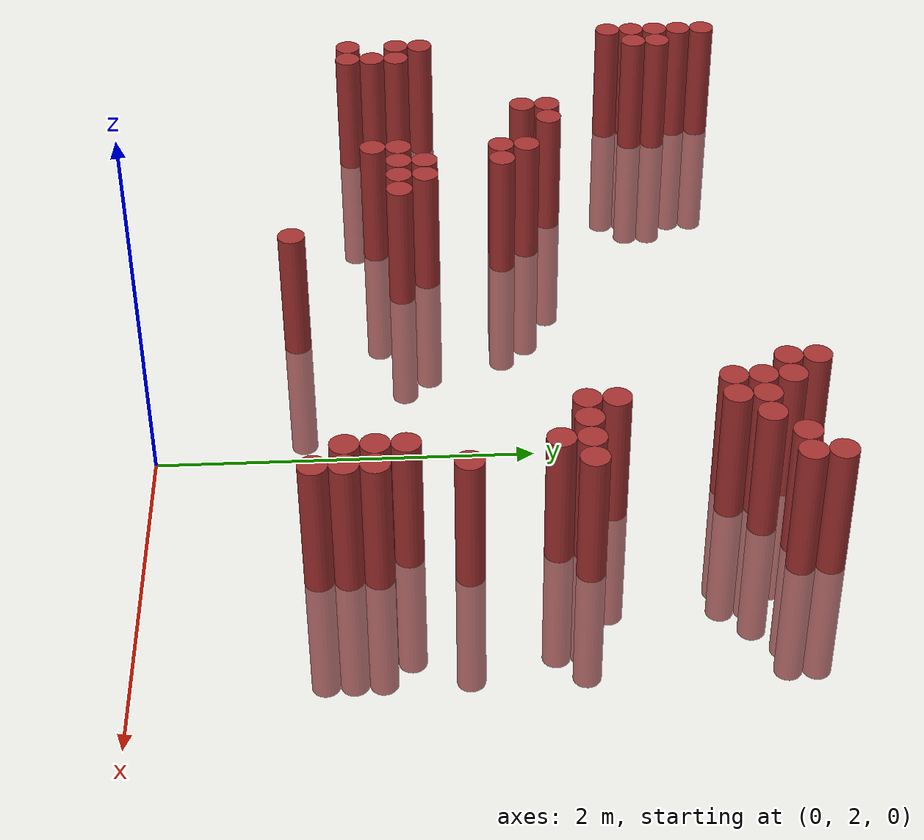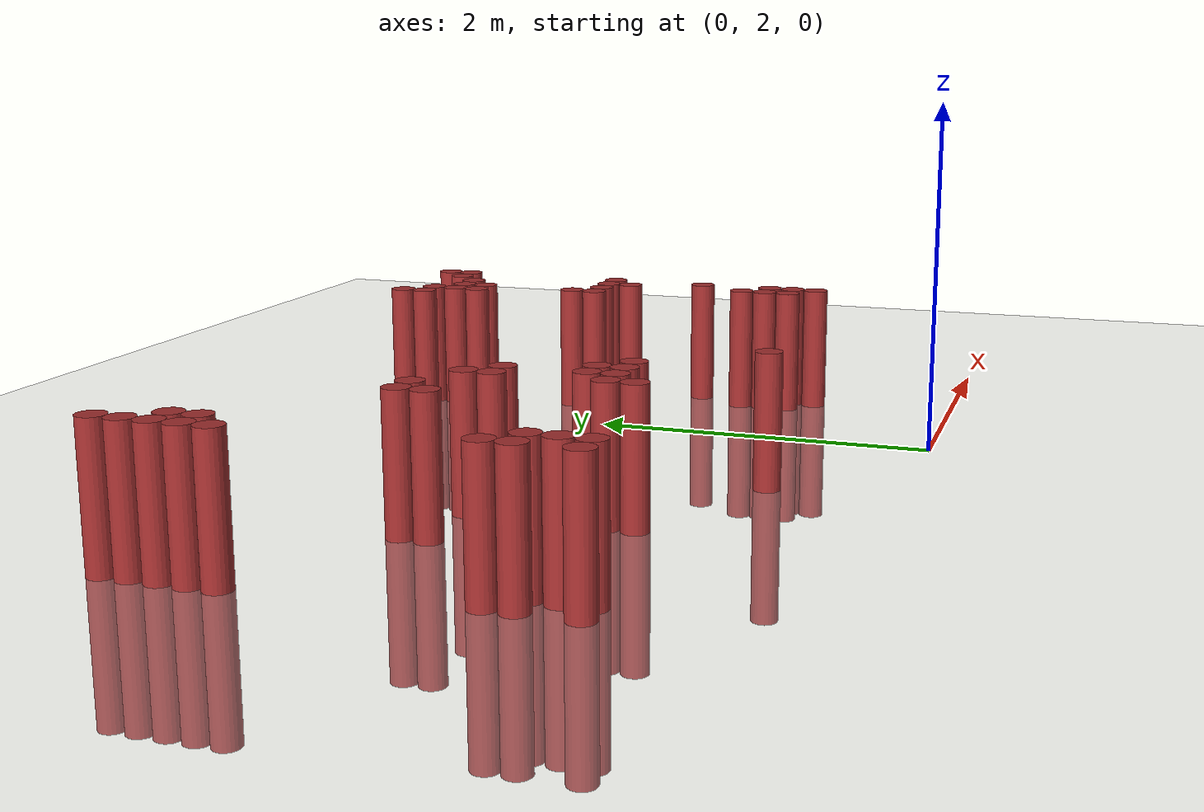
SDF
<sdf version="1.6">
 <world name="default">
  <model name="ground_plane">
   <static>1</static>
   <link name="link">
    <collision name="collision">
     <geometry><plane><normal>0 0 1</normal><size>100 100</size></plane></geometry>
     <surface><friction><ode><mu>100</mu><mu2>50</mu2></ode></friction></surface>
    </collision>
    <visual name="visual">
     <cast_shadows>0</cast_shadows>
     <geometry><plane><normal>0 0 1</normal><size>100 100</size></plane></geometry>
     <material>
      <script><uri>file://media/materials/scripts/gazebo.material</uri><name>Gazebo/Grey</name></script>
     </material>
    </visual>
   </link>
  </model>
  <model name="unit_cylinder_272">
   <static>1</static>
   <pose>-3.275000 4.675000 0.000000 0.000000 0.000000 0.000000</pose>
   <link name="link">
    <inertial>
     <mass>1</mass>
     <inertia><ixx>0.145833</ixx><ixy>0</ixy><ixz>0</ixz><iyy>0.145833</iyy><iyz>0</iyz><izz>0.125</izz></inertia>
    </inertial>
    <collision name="collision">
     <geometry><cylinder><radius>0.075000</radius><length>1.5</length></cylinder></geometry>
    </collision>
    <visual name="visual">
     <geometry><cylinder><radius>0.075000</radius><length>1.5</length></cylinder></geometry>
     <material>
      <ambient>0.648000 0.192000 0.192000 1</ambient>
      <diffuse>0.648000 0.192000 0.192000 1</diffuse>
     </material>
     <material>
      <script><name>Gazebo/Grey</name><uri>file://media/materials/scripts/gazebo.material</uri></script>
     </material>
    </visual>
   </link>
  </model>
  <model name="unit_cylinder_273">
   <static>1</static>
   <pose>-3.275000 4.825000 0.000000 0.000000 0.000000 0.000000</pose>
   <link name="link">
    <inertial>
     <mass>1</mass>
     <inertia><ixx>0.145833</ixx><ixy>0</ixy><ixz>0</ixz><iyy>0.145833</iyy><iyz>0</iyz><izz>0.125</izz></inertia>
    </inertial>
    <collision name="collision">
     <geometry><cylinder><radius>0.075000</radius><length>1.5</length></cylinder></geometry>
    </collision>
    <visual name="visual">
     <geometry><cylinder><radius>0.075000</radius><length>1.5</length></cylinder></geometry>
     <material>
      <ambient>0.648000 0.192000 0.192000 1</ambient>
      <diffuse>0.648000 0.192000 0.192000 1</diffuse>
     </material>
     <material>
      <script><name>Gazebo/Grey</name><uri>file://media/materials/scripts/gazebo.material</uri></script>
     </material>
    </visual>
   </link>
  </model>
  <model name="unit_cylinder_274">
   <static>1</static>
   <pose>-3.275000 4.975000 0.000000 0.000000 0.000000 0.000000</pose>
   <link name="link">
    <inertial>
     <mass>1</mass>
     <inertia><ixx>0.145833</ixx><ixy>0</ixy><ixz>0</ixz><iyy>0.145833</iyy><iyz>0</iyz><izz>0.125</izz></inertia>
    </inertial>
    <collision name="collision">
     <geometry><cylinder><radius>0.075000</radius><length>1.5</length></cylinder></geometry>
    </collision>
    <visual name="visual">
     <geometry><cylinder><radius>0.075000</radius><length>1.5</length></cylinder></geometry>
     <material>
      <ambient>0.648000 0.192000 0.192000 1</ambient>
      <diffuse>0.648000 0.192000 0.192000 1</diffuse>
     </material>
     <material>
      <script><name>Gazebo/Grey</name><uri>file://media/materials/scripts/gazebo.material</uri></script>
     </material>
    </visual>
   </link>
  </model>
  <model name="unit_cylinder_275">
   <static>1</static>
   <pose>-3.275000 5.125000 0.000000 0.000000 0.000000 0.000000</pose>
   <link name="link">
    <inertial>
     <mass>1</mass>
     <inertia><ixx>0.145833</ixx><ixy>0</ixy><ixz>0</ixz><iyy>0.145833</iyy><iyz>0</iyz><izz>0.125</izz></inertia>
    </inertial>
    <collision name="collision">
     <geometry><cylinder><radius>0.075000</radius><length>1.5</length></cylinder></geometry>
    </collision>
    <visual name="visual">
     <geometry><cylinder><radius>0.075000</radius><length>1.5</length></cylinder></geometry>
     <material>
      <ambient>0.648000 0.192000 0.192000 1</ambient>
      <diffuse>0.648000 0.192000 0.192000 1</diffuse>
     </material>
     <material>
      <script><name>Gazebo/Grey</name><uri>file://media/materials/scripts/gazebo.material</uri></script>
     </material>
    </visual>
   </link>
  </model>
  <model name="unit_cylinder_276">
   <static>1</static>
   <pose>-3.275000 5.275000 0.000000 0.000000 0.000000 0.000000</pose>
   <link name="link">
    <inertial>
     <mass>1</mass>
     <inertia><ixx>0.145833</ixx><ixy>0</ixy><ixz>0</ixz><iyy>0.145833</iyy><iyz>0</iyz><izz>0.125</izz></inertia>
    </inertial>
    <collision name="collision">
     <geometry><cylinder><radius>0.075000</radius><length>1.5</length></cylinder></geometry>
    </collision>
    <visual name="visual">
     <geometry><cylinder><radius>0.075000</radius><length>1.5</length></cylinder></geometry>
     <material>
      <ambient>0.648000 0.192000 0.192000 1</ambient>
      <diffuse>0.648000 0.192000 0.192000 1</diffuse>
     </material>
     <material>
      <script><name>Gazebo/Grey</name><uri>file://media/materials/scripts/gazebo.material</uri></script>
     </material>
    </visual>
   </link>
  </model>
  <model name="unit_cylinder_284">
   <static>1</static>
   <pose>-3.125000 3.025000 0.000000 0.000000 0.000000 0.000000</pose>
   <link name="link">
    <inertial>
     <mass>1</mass>
     <inertia><ixx>0.145833</ixx><ixy>0</ixy><ixz>0</ixz><iyy>0.145833</iyy><iyz>0</iyz><izz>0.125</izz></inertia>
    </inertial>
    <collision name="collision">
     <geometry><cylinder><radius>0.075000</radius><length>1.5</length></cylinder></geometry>
    </collision>
    <visual name="visual">
     <geometry><cylinder><radius>0.075000</radius><length>1.5</length></cylinder></geometry>
     <material>
      <ambient>0.648000 0.192000 0.192000 1</ambient>
      <diffuse>0.648000 0.192000 0.192000 1</diffuse>
     </material>
     <material>
      <script><name>Gazebo/Grey</name><uri>file://media/materials/scripts/gazebo.material</uri></script>
     </material>
    </visual>
   </link>
  </model>
  <model name="unit_cylinder_285">
   <static>1</static>
   <pose>-3.125000 3.325000 0.000000 0.000000 0.000000 0.000000</pose>
   <link name="link">
    <inertial>
     <mass>1</mass>
     <inertia><ixx>0.145833</ixx><ixy>0</ixy><ixz>0</ixz><iyy>0.145833</iyy><iyz>0</iyz><izz>0.125</izz></inertia>
    </inertial>
    <collision name="collision">
     <geometry><cylinder><radius>0.075000</radius><length>1.5</length></cylinder></geometry>
    </collision>
    <visual name="visual">
     <geometry><cylinder><radius>0.075000</radius><length>1.5</length></cylinder></geometry>
     <material>
      <ambient>0.648000 0.192000 0.192000 1</ambient>
      <diffuse>0.648000 0.192000 0.192000 1</diffuse>
     </material>
     <material>
      <script><name>Gazebo/Grey</name><uri>file://media/materials/scripts/gazebo.material</uri></script>
     </material>
    </visual>
   </link>
  </model>
  <model name="unit_cylinder_286">
   <static>1</static>
   <pose>-3.125000 3.475000 0.000000 0.000000 0.000000 0.000000</pose>
   <link name="link">
    <inertial>
     <mass>1</mass>
     <inertia><ixx>0.145833</ixx><ixy>0</ixy><ixz>0</ixz><iyy>0.145833</iyy><iyz>0</iyz><izz>0.125</izz></inertia>
    </inertial>
    <collision name="collision">
     <geometry><cylinder><radius>0.075000</radius><length>1.5</length></cylinder></geometry>
    </collision>
    <visual name="visual">
     <geometry><cylinder><radius>0.075000</radius><length>1.5</length></cylinder></geometry>
     <material>
      <ambient>0.648000 0.192000 0.192000 1</ambient>
      <diffuse>0.648000 0.192000 0.192000 1</diffuse>
     </material>
     <material>
      <script><name>Gazebo/Grey</name><uri>file://media/materials/scripts/gazebo.material</uri></script>
     </material>
    </visual>
   </link>
  </model>
  <model name="unit_cylinder_287">
   <static>1</static>
   <pose>-3.125000 4.825000 0.000000 0.000000 0.000000 0.000000</pose>
   <link name="link">
    <inertial>
     <mass>1</mass>
     <inertia><ixx>0.145833</ixx><ixy>0</ixy><ixz>0</ixz><iyy>0.145833</iyy><iyz>0</iyz><izz>0.125</izz></inertia>
    </inertial>
    <collision name="collision">
     <geometry><cylinder><radius>0.075000</radius><length>1.5</length></cylinder></geometry>
    </collision>
    <visual name="visual">
     <geometry><cylinder><radius>0.075000</radius><length>1.5</length></cylinder></geometry>
     <material>
      <ambient>0.648000 0.192000 0.192000 1</ambient>
      <diffuse>0.648000 0.192000 0.192000 1</diffuse>
     </material>
     <material>
      <script><name>Gazebo/Grey</name><uri>file://media/materials/scripts/gazebo.material</uri></script>
     </material>
    </visual>
   </link>
  </model>
  <model name="unit_cylinder_288">
   <static>1</static>
   <pose>-3.125000 4.975000 0.000000 0.000000 0.000000 0.000000</pose>
   <link name="link">
    <inertial>
     <mass>1</mass>
     <inertia><ixx>0.145833</ixx><ixy>0</ixy><ixz>0</ixz><iyy>0.145833</iyy><iyz>0</iyz><izz>0.125</izz></inertia>
    </inertial>
    <collision name="collision">
     <geometry><cylinder><radius>0.075000</radius><length>1.5</length></cylinder></geometry>
    </collision>
    <visual name="visual">
     <geometry><cylinder><radius>0.075000</radius><length>1.5</length></cylinder></geometry>
     <material>
      <ambient>0.648000 0.192000 0.192000 1</ambient>
      <diffuse>0.648000 0.192000 0.192000 1</diffuse>
     </material>
     <material>
      <script><name>Gazebo/Grey</name><uri>file://media/materials/scripts/gazebo.material</uri></script>
     </material>
    </visual>
   </link>
  </model>
  <model name="unit_cylinder_295">
   <static>1</static>
   <pose>-2.975000 3.025000 0.000000 0.000000 0.000000 0.000000</pose>
   <link name="link">
    <inertial>
     <mass>1</mass>
     <inertia><ixx>0.145833</ixx><ixy>0</ixy><ixz>0</ixz><iyy>0.145833</iyy><iyz>0</iyz><izz>0.125</izz></inertia>
    </inertial>
    <collision name="collision">
     <geometry><cylinder><radius>0.075000</radius><length>1.5</length></cylinder></geometry>
    </collision>
    <visual name="visual">
     <geometry><cylinder><radius>0.075000</radius><length>1.5</length></cylinder></geometry>
     <material>
      <ambient>0.648000 0.192000 0.192000 1</ambient>
      <diffuse>0.648000 0.192000 0.192000 1</diffuse>
     </material>
     <material>
      <script><name>Gazebo/Grey</name><uri>file://media/materials/scripts/gazebo.material</uri></script>
     </material>
    </visual>
   </link>
  </model>
  <model name="unit_cylinder_296">
   <static>1</static>
   <pose>-2.975000 3.175000 0.000000 0.000000 0.000000 0.000000</pose>
   <link name="link">
    <inertial>
     <mass>1</mass>
     <inertia><ixx>0.145833</ixx><ixy>0</ixy><ixz>0</ixz><iyy>0.145833</iyy><iyz>0</iyz><izz>0.125</izz></inertia>
    </inertial>
    <collision name="collision">
     <geometry><cylinder><radius>0.075000</radius><length>1.5</length></cylinder></geometry>
    </collision>
    <visual name="visual">
     <geometry><cylinder><radius>0.075000</radius><length>1.5</length></cylinder></geometry>
     <material>
      <ambient>0.648000 0.192000 0.192000 1</ambient>
      <diffuse>0.648000 0.192000 0.192000 1</diffuse>
     </material>
     <material>
      <script><name>Gazebo/Grey</name><uri>file://media/materials/scripts/gazebo.material</uri></script>
     </material>
    </visual>
   </link>
  </model>
  <model name="unit_cylinder_297">
   <static>1</static>
   <pose>-2.975000 3.325000 0.000000 0.000000 0.000000 0.000000</pose>
   <link name="link">
    <inertial>
     <mass>1</mass>
     <inertia><ixx>0.145833</ixx><ixy>0</ixy><ixz>0</ixz><iyy>0.145833</iyy><iyz>0</iyz><izz>0.125</izz></inertia>
    </inertial>
    <collision name="collision">
     <geometry><cylinder><radius>0.075000</radius><length>1.5</length></cylinder></geometry>
    </collision>
    <visual name="visual">
     <geometry><cylinder><radius>0.075000</radius><length>1.5</length></cylinder></geometry>
     <material>
      <ambient>0.648000 0.192000 0.192000 1</ambient>
      <diffuse>0.648000 0.192000 0.192000 1</diffuse>
     </material>
     <material>
      <script><name>Gazebo/Grey</name><uri>file://media/materials/scripts/gazebo.material</uri></script>
     </material>
    </visual>
   </link>
  </model>
  <model name="unit_cylinder_315">
   <static>1</static>
   <pose>-2.375000 4.075000 0.000000 0.000000 0.000000 0.000000</pose>
   <link name="link">
    <inertial>
     <mass>1</mass>
     <inertia><ixx>0.145833</ixx><ixy>0</ixy><ixz>0</ixz><iyy>0.145833</iyy><iyz>0</iyz><izz>0.125</izz></inertia>
    </inertial>
    <collision name="collision">
     <geometry><cylinder><radius>0.075000</radius><length>1.5</length></cylinder></geometry>
    </collision>
    <visual name="visual">
     <geometry><cylinder><radius>0.075000</radius><length>1.5</length></cylinder></geometry>
     <material>
      <ambient>0.648000 0.192000 0.192000 1</ambient>
      <diffuse>0.648000 0.192000 0.192000 1</diffuse>
     </material>
     <material>
      <script><name>Gazebo/Grey</name><uri>file://media/materials/scripts/gazebo.material</uri></script>
     </material>
    </visual>
   </link>
  </model>
  <model name="unit_cylinder_316">
   <static>1</static>
   <pose>-2.375000 4.225000 0.000000 0.000000 0.000000 0.000000</pose>
   <link name="link">
    <inertial>
     <mass>1</mass>
     <inertia><ixx>0.145833</ixx><ixy>0</ixy><ixz>0</ixz><iyy>0.145833</iyy><iyz>0</iyz><izz>0.125</izz></inertia>
    </inertial>
    <collision name="collision">
     <geometry><cylinder><radius>0.075000</radius><length>1.5</length></cylinder></geometry>
    </collision>
    <visual name="visual">
     <geometry><cylinder><radius>0.075000</radius><length>1.5</length></cylinder></geometry>
     <material>
      <ambient>0.648000 0.192000 0.192000 1</ambient>
      <diffuse>0.648000 0.192000 0.192000 1</diffuse>
     </material>
     <material>
      <script><name>Gazebo/Grey</name><uri>file://media/materials/scripts/gazebo.material</uri></script>
     </material>
    </visual>
   </link>
  </model>
  <model name="unit_cylinder_325">
   <static>1</static>
   <pose>-2.225000 4.225000 0.000000 0.000000 0.000000 0.000000</pose>
   <link name="link">
    <inertial>
     <mass>1</mass>
     <inertia><ixx>0.145833</ixx><ixy>0</ixy><ixz>0</ixz><iyy>0.145833</iyy><iyz>0</iyz><izz>0.125</izz></inertia>
    </inertial>
    <collision name="collision">
     <geometry><cylinder><radius>0.075000</radius><length>1.5</length></cylinder></geometry>
    </collision>
    <visual name="visual">
     <geometry><cylinder><radius>0.075000</radius><length>1.5</length></cylinder></geometry>
     <material>
      <ambient>0.648000 0.192000 0.192000 1</ambient>
      <diffuse>0.648000 0.192000 0.192000 1</diffuse>
     </material>
     <material>
      <script><name>Gazebo/Grey</name><uri>file://media/materials/scripts/gazebo.material</uri></script>
     </material>
    </visual>
   </link>
  </model>
  <model name="unit_cylinder_343">
   <static>1</static>
   <pose>-1.925000 3.175000 0.000000 0.000000 0.000000 0.000000</pose>
   <link name="link">
    <inertial>
     <mass>1</mass>
     <inertia><ixx>0.145833</ixx><ixy>0</ixy><ixz>0</ixz><iyy>0.145833</iyy><iyz>0</iyz><izz>0.125</izz></inertia>
    </inertial>
    <collision name="collision">
     <geometry><cylinder><radius>0.075000</radius><length>1.5</length></cylinder></geometry>
    </collision>
    <visual name="visual">
     <geometry><cylinder><radius>0.075000</radius><length>1.5</length></cylinder></geometry>
     <material>
      <ambient>0.648000 0.192000 0.192000 1</ambient>
      <diffuse>0.648000 0.192000 0.192000 1</diffuse>
     </material>
     <material>
      <script><name>Gazebo/Grey</name><uri>file://media/materials/scripts/gazebo.material</uri></script>
     </material>
    </visual>
   </link>
  </model>
  <model name="unit_cylinder_344">
   <static>1</static>
   <pose>-1.925000 3.325000 0.000000 0.000000 0.000000 0.000000</pose>
   <link name="link">
    <inertial>
     <mass>1</mass>
     <inertia><ixx>0.145833</ixx><ixy>0</ixy><ixz>0</ixz><iyy>0.145833</iyy><iyz>0</iyz><izz>0.125</izz></inertia>
    </inertial>
    <collision name="collision">
     <geometry><cylinder><radius>0.075000</radius><length>1.5</length></cylinder></geometry>
    </collision>
    <visual name="visual">
     <geometry><cylinder><radius>0.075000</radius><length>1.5</length></cylinder></geometry>
     <material>
      <ambient>0.648000 0.192000 0.192000 1</ambient>
      <diffuse>0.648000 0.192000 0.192000 1</diffuse>
     </material>
     <material>
      <script><name>Gazebo/Grey</name><uri>file://media/materials/scripts/gazebo.material</uri></script>
     </material>
    </visual>
   </link>
  </model>
  <model name="unit_cylinder_345">
   <static>1</static>
   <pose>-1.925000 3.925000 0.000000 0.000000 0.000000 0.000000</pose>
   <link name="link">
    <inertial>
     <mass>1</mass>
     <inertia><ixx>0.145833</ixx><ixy>0</ixy><ixz>0</ixz><iyy>0.145833</iyy><iyz>0</iyz><izz>0.125</izz></inertia>
    </inertial>
    <collision name="collision">
     <geometry><cylinder><radius>0.075000</radius><length>1.5</length></cylinder></geometry>
    </collision>
    <visual name="visual">
     <geometry><cylinder><radius>0.075000</radius><length>1.5</length></cylinder></geometry>
     <material>
      <ambient>0.648000 0.192000 0.192000 1</ambient>
      <diffuse>0.648000 0.192000 0.192000 1</diffuse>
     </material>
     <material>
      <script><name>Gazebo/Grey</name><uri>file://media/materials/scripts/gazebo.material</uri></script>
     </material>
    </visual>
   </link>
  </model>
  <model name="unit_cylinder_346">
   <static>1</static>
   <pose>-1.925000 4.075000 0.000000 0.000000 0.000000 0.000000</pose>
   <link name="link">
    <inertial>
     <mass>1</mass>
     <inertia><ixx>0.145833</ixx><ixy>0</ixy><ixz>0</ixz><iyy>0.145833</iyy><iyz>0</iyz><izz>0.125</izz></inertia>
    </inertial>
    <collision name="collision">
     <geometry><cylinder><radius>0.075000</radius><length>1.5</length></cylinder></geometry>
    </collision>
    <visual name="visual">
     <geometry><cylinder><radius>0.075000</radius><length>1.5</length></cylinder></geometry>
     <material>
      <ambient>0.648000 0.192000 0.192000 1</ambient>
      <diffuse>0.648000 0.192000 0.192000 1</diffuse>
     </material>
     <material>
      <script><name>Gazebo/Grey</name><uri>file://media/materials/scripts/gazebo.material</uri></script>
     </material>
    </visual>
   </link>
  </model>
  <model name="unit_cylinder_352">
   <static>1</static>
   <pose>-1.775000 3.325000 0.000000 0.000000 0.000000 0.000000</pose>
   <link name="link">
    <inertial>
     <mass>1</mass>
     <inertia><ixx>0.145833</ixx><ixy>0</ixy><ixz>0</ixz><iyy>0.145833</iyy><iyz>0</iyz><izz>0.125</izz></inertia>
    </inertial>
    <collision name="collision">
     <geometry><cylinder><radius>0.075000</radius><length>1.5</length></cylinder></geometry>
    </collision>
    <visual name="visual">
     <geometry><cylinder><radius>0.075000</radius><length>1.5</length></cylinder></geometry>
     <material>
      <ambient>0.648000 0.192000 0.192000 1</ambient>
      <diffuse>0.648000 0.192000 0.192000 1</diffuse>
     </material>
     <material>
      <script><name>Gazebo/Grey</name><uri>file://media/materials/scripts/gazebo.material</uri></script>
     </material>
    </visual>
   </link>
  </model>
  <model name="unit_cylinder_353">
   <static>1</static>
   <pose>-1.775000 3.475000 0.000000 0.000000 0.000000 0.000000</pose>
   <link name="link">
    <inertial>
     <mass>1</mass>
     <inertia><ixx>0.145833</ixx><ixy>0</ixy><ixz>0</ixz><iyy>0.145833</iyy><iyz>0</iyz><izz>0.125</izz></inertia>
    </inertial>
    <collision name="collision">
     <geometry><cylinder><radius>0.075000</radius><length>1.5</length></cylinder></geometry>
    </collision>
    <visual name="visual">
     <geometry><cylinder><radius>0.075000</radius><length>1.5</length></cylinder></geometry>
     <material>
      <ambient>0.648000 0.192000 0.192000 1</ambient>
      <diffuse>0.648000 0.192000 0.192000 1</diffuse>
     </material>
     <material>
      <script><name>Gazebo/Grey</name><uri>file://media/materials/scripts/gazebo.material</uri></script>
     </material>
    </visual>
   </link>
  </model>
  <model name="unit_cylinder_354">
   <static>1</static>
   <pose>-1.775000 3.925000 0.000000 0.000000 0.000000 0.000000</pose>
   <link name="link">
    <inertial>
     <mass>1</mass>
     <inertia><ixx>0.145833</ixx><ixy>0</ixy><ixz>0</ixz><iyy>0.145833</iyy><iyz>0</iyz><izz>0.125</izz></inertia>
    </inertial>
    <collision name="collision">
     <geometry><cylinder><radius>0.075000</radius><length>1.5</length></cylinder></geometry>
    </collision>
    <visual name="visual">
     <geometry><cylinder><radius>0.075000</radius><length>1.5</length></cylinder></geometry>
     <material>
      <ambient>0.648000 0.192000 0.192000 1</ambient>
      <diffuse>0.648000 0.192000 0.192000 1</diffuse>
     </material>
     <material>
      <script><name>Gazebo/Grey</name><uri>file://media/materials/scripts/gazebo.material</uri></script>
     </material>
    </visual>
   </link>
  </model>
  <model name="unit_cylinder_357">
   <static>1</static>
   <pose>-1.625000 3.325000 0.000000 0.000000 0.000000 0.000000</pose>
   <link name="link">
    <inertial>
     <mass>1</mass>
     <inertia><ixx>0.145833</ixx><ixy>0</ixy><ixz>0</ixz><iyy>0.145833</iyy><iyz>0</iyz><izz>0.125</izz></inertia>
    </inertial>
    <collision name="collision">
     <geometry><cylinder><radius>0.075000</radius><length>1.5</length></cylinder></geometry>
    </collision>
    <visual name="visual">
     <geometry><cylinder><radius>0.075000</radius><length>1.5</length></cylinder></geometry>
     <material>
      <ambient>0.648000 0.192000 0.192000 1</ambient>
      <diffuse>0.648000 0.192000 0.192000 1</diffuse>
     </material>
     <material>
      <script><name>Gazebo/Grey</name><uri>file://media/materials/scripts/gazebo.material</uri></script>
     </material>
    </visual>
   </link>
  </model>
  <model name="unit_cylinder_358">
   <static>1</static>
   <pose>-1.625000 3.475000 0.000000 0.000000 0.000000 0.000000</pose>
   <link name="link">
    <inertial>
     <mass>1</mass>
     <inertia><ixx>0.145833</ixx><ixy>0</ixy><ixz>0</ixz><iyy>0.145833</iyy><iyz>0</iyz><izz>0.125</izz></inertia>
    </inertial>
    <collision name="collision">
     <geometry><cylinder><radius>0.075000</radius><length>1.5</length></cylinder></geometry>
    </collision>
    <visual name="visual">
     <geometry><cylinder><radius>0.075000</radius><length>1.5</length></cylinder></geometry>
     <material>
      <ambient>0.648000 0.192000 0.192000 1</ambient>
      <diffuse>0.648000 0.192000 0.192000 1</diffuse>
     </material>
     <material>
      <script><name>Gazebo/Grey</name><uri>file://media/materials/scripts/gazebo.material</uri></script>
     </material>
    </visual>
   </link>
  </model>
  <model name="unit_cylinder_359">
   <static>1</static>
   <pose>-1.475000 3.325000 0.000000 0.000000 0.000000 0.000000</pose>
   <link name="link">
    <inertial>
     <mass>1</mass>
     <inertia><ixx>0.145833</ixx><ixy>0</ixy><ixz>0</ixz><iyy>0.145833</iyy><iyz>0</iyz><izz>0.125</izz></inertia>
    </inertial>
    <collision name="collision">
     <geometry><cylinder><radius>0.075000</radius><length>1.5</length></cylinder></geometry>
    </collision>
    <visual name="visual">
     <geometry><cylinder><radius>0.075000</radius><length>1.5</length></cylinder></geometry>
     <material>
      <ambient>0.648000 0.192000 0.192000 1</ambient>
      <diffuse>0.648000 0.192000 0.192000 1</diffuse>
     </material>
     <material>
      <script><name>Gazebo/Grey</name><uri>file://media/materials/scripts/gazebo.material</uri></script>
     </material>
    </visual>
   </link>
  </model>
  <model name="unit_cylinder_372">
   <static>1</static>
   <pose>-1.025000 2.725000 0.000000 0.000000 0.000000 0.000000</pose>
   <link name="link">
    <inertial>
     <mass>1</mass>
     <inertia><ixx>0.145833</ixx><ixy>0</ixy><ixz>0</ixz><iyy>0.145833</iyy><iyz>0</iyz><izz>0.125</izz></inertia>
    </inertial>
    <collision name="collision">
     <geometry><cylinder><radius>0.075000</radius><length>1.5</length></cylinder></geometry>
    </collision>
    <visual name="visual">
     <geometry><cylinder><radius>0.075000</radius><length>1.5</length></cylinder></geometry>
     <material>
      <ambient>0.648000 0.192000 0.192000 1</ambient>
      <diffuse>0.648000 0.192000 0.192000 1</diffuse>
     </material>
     <material>
      <script><name>Gazebo/Grey</name><uri>file://media/materials/scripts/gazebo.material</uri></script>
     </material>
    </visual>
   </link>
  </model>
  <model name="unit_cylinder_386">
   <static>1</static>
   <pose>0.175000 5.275000 0.000000 0.000000 0.000000 0.000000</pose>
   <link name="link">
    <inertial>
     <mass>1</mass>
     <inertia><ixx>0.145833</ixx><ixy>0</ixy><ixz>0</ixz><iyy>0.145833</iyy><iyz>0</iyz><izz>0.125</izz></inertia>
    </inertial>
    <collision name="collision">
     <geometry><cylinder><radius>0.075000</radius><length>1.5</length></cylinder></geometry>
    </collision>
    <visual name="visual">
     <geometry><cylinder><radius>0.075000</radius><length>1.5</length></cylinder></geometry>
     <material>
      <ambient>0.648000 0.192000 0.192000 1</ambient>
      <diffuse>0.648000 0.192000 0.192000 1</diffuse>
     </material>
     <material>
      <script><name>Gazebo/Grey</name><uri>file://media/materials/scripts/gazebo.material</uri></script>
     </material>
    </visual>
   </link>
  </model>
  <model name="unit_cylinder_387">
   <static>1</static>
   <pose>0.175000 5.425000 0.000000 0.000000 0.000000 0.000000</pose>
   <link name="link">
    <inertial>
     <mass>1</mass>
     <inertia><ixx>0.145833</ixx><ixy>0</ixy><ixz>0</ixz><iyy>0.145833</iyy><iyz>0</iyz><izz>0.125</izz></inertia>
    </inertial>
    <collision name="collision">
     <geometry><cylinder><radius>0.075000</radius><length>1.5</length></cylinder></geometry>
    </collision>
    <visual name="visual">
     <geometry><cylinder><radius>0.075000</radius><length>1.5</length></cylinder></geometry>
     <material>
      <ambient>0.648000 0.192000 0.192000 1</ambient>
      <diffuse>0.648000 0.192000 0.192000 1</diffuse>
     </material>
     <material>
      <script><name>Gazebo/Grey</name><uri>file://media/materials/scripts/gazebo.material</uri></script>
     </material>
    </visual>
   </link>
  </model>
  <model name="unit_cylinder_388">
   <static>1</static>
   <pose>0.325000 4.975000 0.000000 0.000000 0.000000 0.000000</pose>
   <link name="link">
    <inertial>
     <mass>1</mass>
     <inertia><ixx>0.145833</ixx><ixy>0</ixy><ixz>0</ixz><iyy>0.145833</iyy><iyz>0</iyz><izz>0.125</izz></inertia>
    </inertial>
    <collision name="collision">
     <geometry><cylinder><radius>0.075000</radius><length>1.5</length></cylinder></geometry>
    </collision>
    <visual name="visual">
     <geometry><cylinder><radius>0.075000</radius><length>1.5</length></cylinder></geometry>
     <material>
      <ambient>0.648000 0.192000 0.192000 1</ambient>
      <diffuse>0.648000 0.192000 0.192000 1</diffuse>
     </material>
     <material>
      <script><name>Gazebo/Grey</name><uri>file://media/materials/scripts/gazebo.material</uri></script>
     </material>
    </visual>
   </link>
  </model>
  <model name="unit_cylinder_389">
   <static>1</static>
   <pose>0.325000 5.125000 0.000000 0.000000 0.000000 0.000000</pose>
   <link name="link">
    <inertial>
     <mass>1</mass>
     <inertia><ixx>0.145833</ixx><ixy>0</ixy><ixz>0</ixz><iyy>0.145833</iyy><iyz>0</iyz><izz>0.125</izz></inertia>
    </inertial>
    <collision name="collision">
     <geometry><cylinder><radius>0.075000</radius><length>1.5</length></cylinder></geometry>
    </collision>
    <visual name="visual">
     <geometry><cylinder><radius>0.075000</radius><length>1.5</length></cylinder></geometry>
     <material>
      <ambient>0.648000 0.192000 0.192000 1</ambient>
      <diffuse>0.648000 0.192000 0.192000 1</diffuse>
     </material>
     <material>
      <script><name>Gazebo/Grey</name><uri>file://media/materials/scripts/gazebo.material</uri></script>
     </material>
    </visual>
   </link>
  </model>
  <model name="unit_cylinder_390">
   <static>1</static>
   <pose>0.325000 5.275000 0.000000 0.000000 0.000000 0.000000</pose>
   <link name="link">
    <inertial>
     <mass>1</mass>
     <inertia><ixx>0.145833</ixx><ixy>0</ixy><ixz>0</ixz><iyy>0.145833</iyy><iyz>0</iyz><izz>0.125</izz></inertia>
    </inertial>
    <collision name="collision">
     <geometry><cylinder><radius>0.075000</radius><length>1.5</length></cylinder></geometry>
    </collision>
    <visual name="visual">
     <geometry><cylinder><radius>0.075000</radius><length>1.5</length></cylinder></geometry>
     <material>
      <ambient>0.648000 0.192000 0.192000 1</ambient>
      <diffuse>0.648000 0.192000 0.192000 1</diffuse>
     </material>
     <material>
      <script><name>Gazebo/Grey</name><uri>file://media/materials/scripts/gazebo.material</uri></script>
     </material>
    </visual>
   </link>
  </model>
  <model name="unit_cylinder_391">
   <static>1</static>
   <pose>0.475000 4.225000 0.000000 0.000000 0.000000 0.000000</pose>
   <link name="link">
    <inertial>
     <mass>1</mass>
     <inertia><ixx>0.145833</ixx><ixy>0</ixy><ixz>0</ixz><iyy>0.145833</iyy><iyz>0</iyz><izz>0.125</izz></inertia>
    </inertial>
    <collision name="collision">
     <geometry><cylinder><radius>0.075000</radius><length>1.5</length></cylinder></geometry>
    </collision>
    <visual name="visual">
     <geometry><cylinder><radius>0.075000</radius><length>1.5</length></cylinder></geometry>
     <material>
      <ambient>0.648000 0.192000 0.192000 1</ambient>
      <diffuse>0.648000 0.192000 0.192000 1</diffuse>
     </material>
     <material>
      <script><name>Gazebo/Grey</name><uri>file://media/materials/scripts/gazebo.material</uri></script>
     </material>
    </visual>
   </link>
  </model>
  <model name="unit_cylinder_392">
   <static>1</static>
   <pose>0.475000 4.375000 0.000000 0.000000 0.000000 0.000000</pose>
   <link name="link">
    <inertial>
     <mass>1</mass>
     <inertia><ixx>0.145833</ixx><ixy>0</ixy><ixz>0</ixz><iyy>0.145833</iyy><iyz>0</iyz><izz>0.125</izz></inertia>
    </inertial>
    <collision name="collision">
     <geometry><cylinder><radius>0.075000</radius><length>1.5</length></cylinder></geometry>
    </collision>
    <visual name="visual">
     <geometry><cylinder><radius>0.075000</radius><length>1.5</length></cylinder></geometry>
     <material>
      <ambient>0.648000 0.192000 0.192000 1</ambient>
      <diffuse>0.648000 0.192000 0.192000 1</diffuse>
     </material>
     <material>
      <script><name>Gazebo/Grey</name><uri>file://media/materials/scripts/gazebo.material</uri></script>
     </material>
    </visual>
   </link>
  </model>
  <model name="unit_cylinder_393">
   <static>1</static>
   <pose>0.475000 4.975000 0.000000 0.000000 0.000000 0.000000</pose>
   <link name="link">
    <inertial>
     <mass>1</mass>
     <inertia><ixx>0.145833</ixx><ixy>0</ixy><ixz>0</ixz><iyy>0.145833</iyy><iyz>0</iyz><izz>0.125</izz></inertia>
    </inertial>
    <collision name="collision">
     <geometry><cylinder><radius>0.075000</radius><length>1.5</length></cylinder></geometry>
    </collision>
    <visual name="visual">
     <geometry><cylinder><radius>0.075000</radius><length>1.5</length></cylinder></geometry>
     <material>
      <ambient>0.648000 0.192000 0.192000 1</ambient>
      <diffuse>0.648000 0.192000 0.192000 1</diffuse>
     </material>
     <material>
      <script><name>Gazebo/Grey</name><uri>file://media/materials/scripts/gazebo.material</uri></script>
     </material>
    </visual>
   </link>
  </model>
  <model name="unit_cylinder_394">
   <static>1</static>
   <pose>0.475000 5.125000 0.000000 0.000000 0.000000 0.000000</pose>
   <link name="link">
    <inertial>
     <mass>1</mass>
     <inertia><ixx>0.145833</ixx><ixy>0</ixy><ixz>0</ixz><iyy>0.145833</iyy><iyz>0</iyz><izz>0.125</izz></inertia>
    </inertial>
    <collision name="collision">
     <geometry><cylinder><radius>0.075000</radius><length>1.5</length></cylinder></geometry>
    </collision>
    <visual name="visual">
     <geometry><cylinder><radius>0.075000</radius><length>1.5</length></cylinder></geometry>
     <material>
      <ambient>0.648000 0.192000 0.192000 1</ambient>
      <diffuse>0.648000 0.192000 0.192000 1</diffuse>
     </material>
     <material>
      <script><name>Gazebo/Grey</name><uri>file://media/materials/scripts/gazebo.material</uri></script>
     </material>
    </visual>
   </link>
  </model>
  <model name="unit_cylinder_395">
   <static>1</static>
   <pose>0.625000 4.225000 0.000000 0.000000 0.000000 0.000000</pose>
   <link name="link">
    <inertial>
     <mass>1</mass>
     <inertia><ixx>0.145833</ixx><ixy>0</ixy><ixz>0</ixz><iyy>0.145833</iyy><iyz>0</iyz><izz>0.125</izz></inertia>
    </inertial>
    <collision name="collision">
     <geometry><cylinder><radius>0.075000</radius><length>1.5</length></cylinder></geometry>
    </collision>
    <visual name="visual">
     <geometry><cylinder><radius>0.075000</radius><length>1.5</length></cylinder></geometry>
     <material>
      <ambient>0.648000 0.192000 0.192000 1</ambient>
      <diffuse>0.648000 0.192000 0.192000 1</diffuse>
     </material>
     <material>
      <script><name>Gazebo/Grey</name><uri>file://media/materials/scripts/gazebo.material</uri></script>
     </material>
    </visual>
   </link>
  </model>
  <model name="unit_cylinder_396">
   <static>1</static>
   <pose>0.625000 5.125000 0.000000 0.000000 0.000000 0.000000</pose>
   <link name="link">
    <inertial>
     <mass>1</mass>
     <inertia><ixx>0.145833</ixx><ixy>0</ixy><ixz>0</ixz><iyy>0.145833</iyy><iyz>0</iyz><izz>0.125</izz></inertia>
    </inertial>
    <collision name="collision">
     <geometry><cylinder><radius>0.075000</radius><length>1.5</length></cylinder></geometry>
    </collision>
    <visual name="visual">
     <geometry><cylinder><radius>0.075000</radius><length>1.5</length></cylinder></geometry>
     <material>
      <ambient>0.648000 0.192000 0.192000 1</ambient>
      <diffuse>0.648000 0.192000 0.192000 1</diffuse>
     </material>
     <material>
      <script><name>Gazebo/Grey</name><uri>file://media/materials/scripts/gazebo.material</uri></script>
     </material>
    </visual>
   </link>
  </model>
  <model name="unit_cylinder_399">
   <static>1</static>
   <pose>0.775000 3.025000 0.000000 0.000000 0.000000 0.000000</pose>
   <link name="link">
    <inertial>
     <mass>1</mass>
     <inertia><ixx>0.145833</ixx><ixy>0</ixy><ixz>0</ixz><iyy>0.145833</iyy><iyz>0</iyz><izz>0.125</izz></inertia>
    </inertial>
    <collision name="collision">
     <geometry><cylinder><radius>0.075000</radius><length>1.5</length></cylinder></geometry>
    </collision>
    <visual name="visual">
     <geometry><cylinder><radius>0.075000</radius><length>1.5</length></cylinder></geometry>
     <material>
      <ambient>0.648000 0.192000 0.192000 1</ambient>
      <diffuse>0.648000 0.192000 0.192000 1</diffuse>
     </material>
     <material>
      <script><name>Gazebo/Grey</name><uri>file://media/materials/scripts/gazebo.material</uri></script>
     </material>
    </visual>
   </link>
  </model>
  <model name="unit_cylinder_400">
   <static>1</static>
   <pose>0.775000 3.175000 0.000000 0.000000 0.000000 0.000000</pose>
   <link name="link">
    <inertial>
     <mass>1</mass>
     <inertia><ixx>0.145833</ixx><ixy>0</ixy><ixz>0</ixz><iyy>0.145833</iyy><iyz>0</iyz><izz>0.125</izz></inertia>
    </inertial>
    <collision name="collision">
     <geometry><cylinder><radius>0.075000</radius><length>1.5</length></cylinder></geometry>
    </collision>
    <visual name="visual">
     <geometry><cylinder><radius>0.075000</radius><length>1.5</length></cylinder></geometry>
     <material>
      <ambient>0.648000 0.192000 0.192000 1</ambient>
      <diffuse>0.648000 0.192000 0.192000 1</diffuse>
     </material>
     <material>
      <script><name>Gazebo/Grey</name><uri>file://media/materials/scripts/gazebo.material</uri></script>
     </material>
    </visual>
   </link>
  </model>
  <model name="unit_cylinder_401">
   <static>1</static>
   <pose>0.775000 3.325000 0.000000 0.000000 0.000000 0.000000</pose>
   <link name="link">
    <inertial>
     <mass>1</mass>
     <inertia><ixx>0.145833</ixx><ixy>0</ixy><ixz>0</ixz><iyy>0.145833</iyy><iyz>0</iyz><izz>0.125</izz></inertia>
    </inertial>
    <collision name="collision">
     <geometry><cylinder><radius>0.075000</radius><length>1.5</length></cylinder></geometry>
    </collision>
    <visual name="visual">
     <geometry><cylinder><radius>0.075000</radius><length>1.5</length></cylinder></geometry>
     <material>
      <ambient>0.648000 0.192000 0.192000 1</ambient>
      <diffuse>0.648000 0.192000 0.192000 1</diffuse>
     </material>
     <material>
      <script><name>Gazebo/Grey</name><uri>file://media/materials/scripts/gazebo.material</uri></script>
     </material>
    </visual>
   </link>
  </model>
  <model name="unit_cylinder_402">
   <static>1</static>
   <pose>0.775000 4.075000 0.000000 0.000000 0.000000 0.000000</pose>
   <link name="link">
    <inertial>
     <mass>1</mass>
     <inertia><ixx>0.145833</ixx><ixy>0</ixy><ixz>0</ixz><iyy>0.145833</iyy><iyz>0</iyz><izz>0.125</izz></inertia>
    </inertial>
    <collision name="collision">
     <geometry><cylinder><radius>0.075000</radius><length>1.5</length></cylinder></geometry>
    </collision>
    <visual name="visual">
     <geometry><cylinder><radius>0.075000</radius><length>1.5</length></cylinder></geometry>
     <material>
      <ambient>0.648000 0.192000 0.192000 1</ambient>
      <diffuse>0.648000 0.192000 0.192000 1</diffuse>
     </material>
     <material>
      <script><name>Gazebo/Grey</name><uri>file://media/materials/scripts/gazebo.material</uri></script>
     </material>
    </visual>
   </link>
  </model>
  <model name="unit_cylinder_403">
   <static>1</static>
   <pose>0.775000 4.225000 0.000000 0.000000 0.000000 0.000000</pose>
   <link name="link">
    <inertial>
     <mass>1</mass>
     <inertia><ixx>0.145833</ixx><ixy>0</ixy><ixz>0</ixz><iyy>0.145833</iyy><iyz>0</iyz><izz>0.125</izz></inertia>
    </inertial>
    <collision name="collision">
     <geometry><cylinder><radius>0.075000</radius><length>1.5</length></cylinder></geometry>
    </collision>
    <visual name="visual">
     <geometry><cylinder><radius>0.075000</radius><length>1.5</length></cylinder></geometry>
     <material>
      <ambient>0.648000 0.192000 0.192000 1</ambient>
      <diffuse>0.648000 0.192000 0.192000 1</diffuse>
     </material>
     <material>
      <script><name>Gazebo/Grey</name><uri>file://media/materials/scripts/gazebo.material</uri></script>
     </material>
    </visual>
   </link>
  </model>
  <model name="unit_cylinder_404">
   <static>1</static>
   <pose>0.775000 5.275000 0.000000 0.000000 0.000000 0.000000</pose>
   <link name="link">
    <inertial>
     <mass>1</mass>
     <inertia><ixx>0.145833</ixx><ixy>0</ixy><ixz>0</ixz><iyy>0.145833</iyy><iyz>0</iyz><izz>0.125</izz></inertia>
    </inertial>
    <collision name="collision">
     <geometry><cylinder><radius>0.075000</radius><length>1.5</length></cylinder></geometry>
    </collision>
    <visual name="visual">
     <geometry><cylinder><radius>0.075000</radius><length>1.5</length></cylinder></geometry>
     <material>
      <ambient>0.648000 0.192000 0.192000 1</ambient>
      <diffuse>0.648000 0.192000 0.192000 1</diffuse>
     </material>
     <material>
      <script><name>Gazebo/Grey</name><uri>file://media/materials/scripts/gazebo.material</uri></script>
     </material>
    </visual>
   </link>
  </model>
  <model name="unit_cylinder_413">
   <static>1</static>
   <pose>0.925000 2.875000 0.000000 0.000000 0.000000 0.000000</pose>
   <link name="link">
    <inertial>
     <mass>1</mass>
     <inertia><ixx>0.145833</ixx><ixy>0</ixy><ixz>0</ixz><iyy>0.145833</iyy><iyz>0</iyz><izz>0.125</izz></inertia>
    </inertial>
    <collision name="collision">
     <geometry><cylinder><radius>0.075000</radius><length>1.5</length></cylinder></geometry>
    </collision>
    <visual name="visual">
     <geometry><cylinder><radius>0.075000</radius><length>1.5</length></cylinder></geometry>
     <material>
      <ambient>0.648000 0.192000 0.192000 1</ambient>
      <diffuse>0.648000 0.192000 0.192000 1</diffuse>
     </material>
     <material>
      <script><name>Gazebo/Grey</name><uri>file://media/materials/scripts/gazebo.material</uri></script>
     </material>
    </visual>
   </link>
  </model>
  <model name="unit_cylinder_414">
   <static>1</static>
   <pose>0.925000 3.025000 0.000000 0.000000 0.000000 0.000000</pose>
   <link name="link">
    <inertial>
     <mass>1</mass>
     <inertia><ixx>0.145833</ixx><ixy>0</ixy><ixz>0</ixz><iyy>0.145833</iyy><iyz>0</iyz><izz>0.125</izz></inertia>
    </inertial>
    <collision name="collision">
     <geometry><cylinder><radius>0.075000</radius><length>1.5</length></cylinder></geometry>
    </collision>
    <visual name="visual">
     <geometry><cylinder><radius>0.075000</radius><length>1.5</length></cylinder></geometry>
     <material>
      <ambient>0.648000 0.192000 0.192000 1</ambient>
      <diffuse>0.648000 0.192000 0.192000 1</diffuse>
     </material>
     <material>
      <script><name>Gazebo/Grey</name><uri>file://media/materials/scripts/gazebo.material</uri></script>
     </material>
    </visual>
   </link>
  </model>
  <model name="unit_cylinder_415">
   <static>1</static>
   <pose>0.925000 3.175000 0.000000 0.000000 0.000000 0.000000</pose>
   <link name="link">
    <inertial>
     <mass>1</mass>
     <inertia><ixx>0.145833</ixx><ixy>0</ixy><ixz>0</ixz><iyy>0.145833</iyy><iyz>0</iyz><izz>0.125</izz></inertia>
    </inertial>
    <collision name="collision">
     <geometry><cylinder><radius>0.075000</radius><length>1.5</length></cylinder></geometry>
    </collision>
    <visual name="visual">
     <geometry><cylinder><radius>0.075000</radius><length>1.5</length></cylinder></geometry>
     <material>
      <ambient>0.648000 0.192000 0.192000 1</ambient>
      <diffuse>0.648000 0.192000 0.192000 1</diffuse>
     </material>
     <material>
      <script><name>Gazebo/Grey</name><uri>file://media/materials/scripts/gazebo.material</uri></script>
     </material>
    </visual>
   </link>
  </model>
  <model name="unit_cylinder_416">
   <static>1</static>
   <pose>0.925000 3.625000 0.000000 0.000000 0.000000 0.000000</pose>
   <link name="link">
    <inertial>
     <mass>1</mass>
     <inertia><ixx>0.145833</ixx><ixy>0</ixy><ixz>0</ixz><iyy>0.145833</iyy><iyz>0</iyz><izz>0.125</izz></inertia>
    </inertial>
    <collision name="collision">
     <geometry><cylinder><radius>0.075000</radius><length>1.5</length></cylinder></geometry>
    </collision>
    <visual name="visual">
     <geometry><cylinder><radius>0.075000</radius><length>1.5</length></cylinder></geometry>
     <material>
      <ambient>0.648000 0.192000 0.192000 1</ambient>
      <diffuse>0.648000 0.192000 0.192000 1</diffuse>
     </material>
     <material>
      <script><name>Gazebo/Grey</name><uri>file://media/materials/scripts/gazebo.material</uri></script>
     </material>
    </visual>
   </link>
  </model>
  <model name="unit_cylinder_417">
   <static>1</static>
   <pose>0.925000 4.225000 0.000000 0.000000 0.000000 0.000000</pose>
   <link name="link">
    <inertial>
     <mass>1</mass>
     <inertia><ixx>0.145833</ixx><ixy>0</ixy><ixz>0</ixz><iyy>0.145833</iyy><iyz>0</iyz><izz>0.125</izz></inertia>
    </inertial>
    <collision name="collision">
     <geometry><cylinder><radius>0.075000</radius><length>1.5</length></cylinder></geometry>
    </collision>
    <visual name="visual">
     <geometry><cylinder><radius>0.075000</radius><length>1.5</length></cylinder></geometry>
     <material>
      <ambient>0.648000 0.192000 0.192000 1</ambient>
      <diffuse>0.648000 0.192000 0.192000 1</diffuse>
     </material>
     <material>
      <script><name>Gazebo/Grey</name><uri>file://media/materials/scripts/gazebo.material</uri></script>
     </material>
    </visual>
   </link>
  </model>
  <model name="unit_cylinder_418">
   <static>1</static>
   <pose>0.925000 5.275000 0.000000 0.000000 0.000000 0.000000</pose>
   <link name="link">
    <inertial>
     <mass>1</mass>
     <inertia><ixx>0.145833</ixx><ixy>0</ixy><ixz>0</ixz><iyy>0.145833</iyy><iyz>0</iyz><izz>0.125</izz></inertia>
    </inertial>
    <collision name="collision">
     <geometry><cylinder><radius>0.075000</radius><length>1.5</length></cylinder></geometry>
    </collision>
    <visual name="visual">
     <geometry><cylinder><radius>0.075000</radius><length>1.5</length></cylinder></geometry>
     <material>
      <ambient>0.648000 0.192000 0.192000 1</ambient>
      <diffuse>0.648000 0.192000 0.192000 1</diffuse>
     </material>
     <material>
      <script><name>Gazebo/Grey</name><uri>file://media/materials/scripts/gazebo.material</uri></script>
     </material>
    </visual>
   </link>
  </model>
  <model name="unit_cylinder_419">
   <static>1</static>
   <pose>0.925000 5.425000 0.000000 0.000000 0.000000 0.000000</pose>
   <link name="link">
    <inertial>
     <mass>1</mass>
     <inertia><ixx>0.145833</ixx><ixy>0</ixy><ixz>0</ixz><iyy>0.145833</iyy><iyz>0</iyz><izz>0.125</izz></inertia>
    </inertial>
    <collision name="collision">
     <geometry><cylinder><radius>0.075000</radius><length>1.5</length></cylinder></geometry>
    </collision>
    <visual name="visual">
     <geometry><cylinder><radius>0.075000</radius><length>1.5</length></cylinder></geometry>
     <material>
      <ambient>0.648000 0.192000 0.192000 1</ambient>
      <diffuse>0.648000 0.192000 0.192000 1</diffuse>
     </material>
     <material>
      <script><name>Gazebo/Grey</name><uri>file://media/materials/scripts/gazebo.material</uri></script>
     </material>
    </visual>
   </link>
  </model>
 </world>
</sdf>
